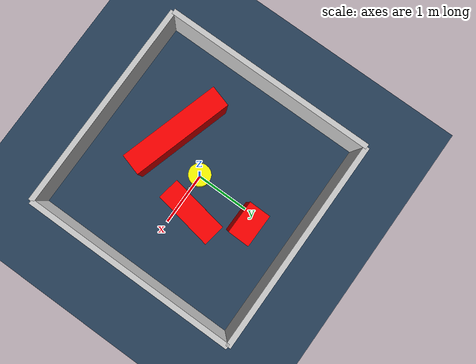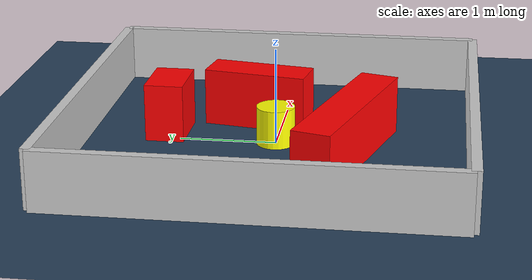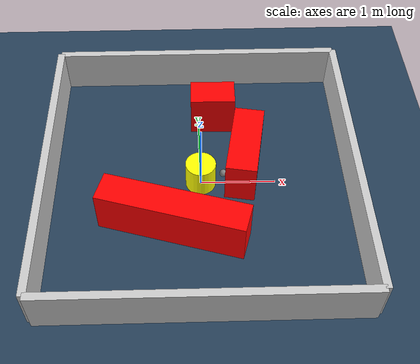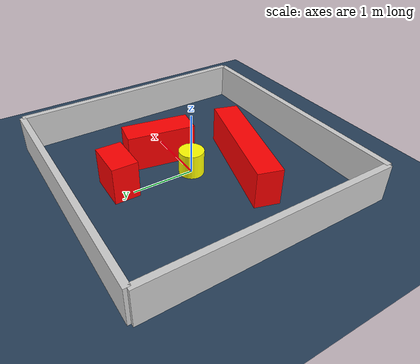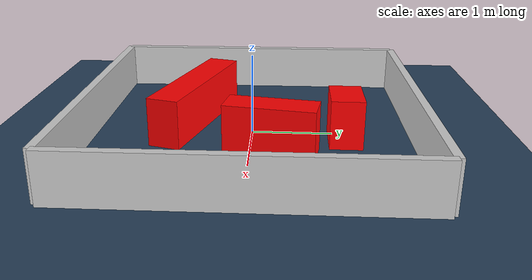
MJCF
<?xml version="1.0" ?>
<mujoco model="generated_environment">
  <option timestep="0.01" integrator="RK4" cone="elliptic"/>
  <default>
    <geom density="1"/>
  </default>
  <asset>
    <texture builtin="gradient" height="3072" rgb1="0.3 0.5 0.7" rgb2="0 0 0" type="skybox" width="512"/>
    <texture builtin="checker" height="300" mark="edge" markrgb="0.8 0.8 0.8" name="groundplane" rgb1="0.2 0.3 0.4" rgb2="0.1 0.2 0.3" type="2d" width="300"/>
    <material name="groundplane" reflectance="0.2" texrepeat="5 5" texture="groundplane" texuniform="true"/>
    <material name="robot" rgba="0.0 1.0 0.0 1"/>
  </asset>
  <worldbody>
    <light dir="0 0 -1" directional="true" pos="0 0 1.5"/>
    <geom condim="4" friction="1.0 0.005 0.001" material="groundplane" name="floor" size="0 0 0.05" type="plane"/>
    <body name="walls">
      <geom name="wall_1" condim="4" pos="-2.0 0.0 0.3" rgba="0.800000011920929 0.800000011920929 0.800000011920929 1.0" size="0.05 2.0 0.3" type="box"/>
      <geom name="wall_2" condim="4" pos="2.0 0.0 0.3" rgba="0.800000011920929 0.800000011920929 0.800000011920929 1.0" size="0.05 2.0 0.3" type="box"/>
      <geom name="wall_3" condim="4" pos="0.0 -2.0 0.3" rgba="0.800000011920929 0.800000011920929 0.800000011920929 1.0" size="2.0 0.05 0.3" type="box"/>
      <geom name="wall_4" condim="4" pos="0.0 2.0 0.3" rgba="0.800000011920929 0.800000011920929 0.800000011920929 1.0" size="2.0 0.05 0.3" type="box"/>
    </body>
    <body name="robot">
      <joint name="joint_x" type="slide" pos="0 0 0" axis="1 0 0"/>
      <joint name="joint_y" type="slide" pos="0 0 0" axis="0 1 0"/>
      <geom name="robot" type="sphere" pos="0.3 0.0 0.2" size="0.05" mass="5." friction="1.0 0.005 0.0001" condim="4" rgba="0.5 0.5 0.5 1.0"/>
      <site name="sensor_ball"/>
    </body>
    <body name="obstacle_movable_1">
      <geom name="obstacle_movable_1" condim="4" pos="0.0 0.0 0.2" euler="0 0 0.0" friction="1.0 0.005 0.001" rgba="1.0 1.0 0.0 1.0" size="0.2 0.2 0.0" type="cylinder" mass="0.1"/>
      <joint type="free"/>
    </body>
    <body name="obstacle_2_static">
      <geom name="obstacle_2_static" condim="4" pos="-0.3577674497516494 -0.7545308411630032 0.3" euler="0 0 163.5269703285568" friction="1.0 0.005 0.001" rgba="1 0 0 1" size="0.9548199344469377 0.2 0.3" type="box"/>
    </body>
    <body name="obstacle_3_static">
      <geom name="obstacle_3_static" condim="4" pos="0.5969750629727844 0.2534188975540064 0.3" euler="0 0 80.1333410994916" friction="1.0 0.005 0.001" rgba="1 0 0 1" size="0.5425883154438808 0.2 0.3" type="box"/>
    </body>
    <body name="obstacle_4_static">
      <geom name="obstacle_4_static" condim="4" pos="0.19620986125607542 1.1445532938024197 0.3" euler="0 0 359.32425294412263" friction="1.0 0.005 0.001" rgba="1 0 0 1" size="0.30620644281235004 0.2 0.3" type="box"/>
    </body>
  </worldbody>
  <actuator>
    <motor name="actuator_x" joint="joint_x" gear="1" ctrlrange="-1 1"/>
    <motor name="actuator_y" joint="joint_y" gear="1" ctrlrange="-1 1"/>
  </actuator>
</mujoco>
